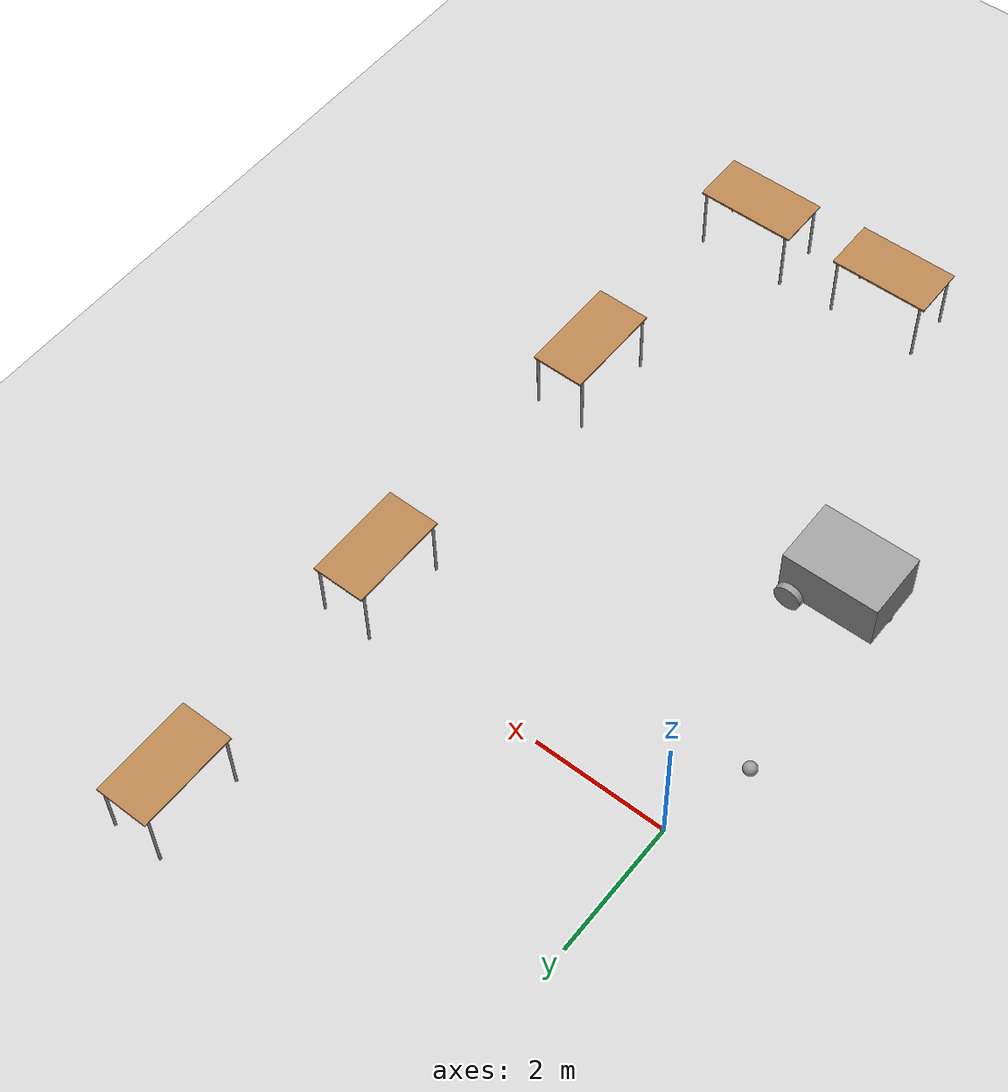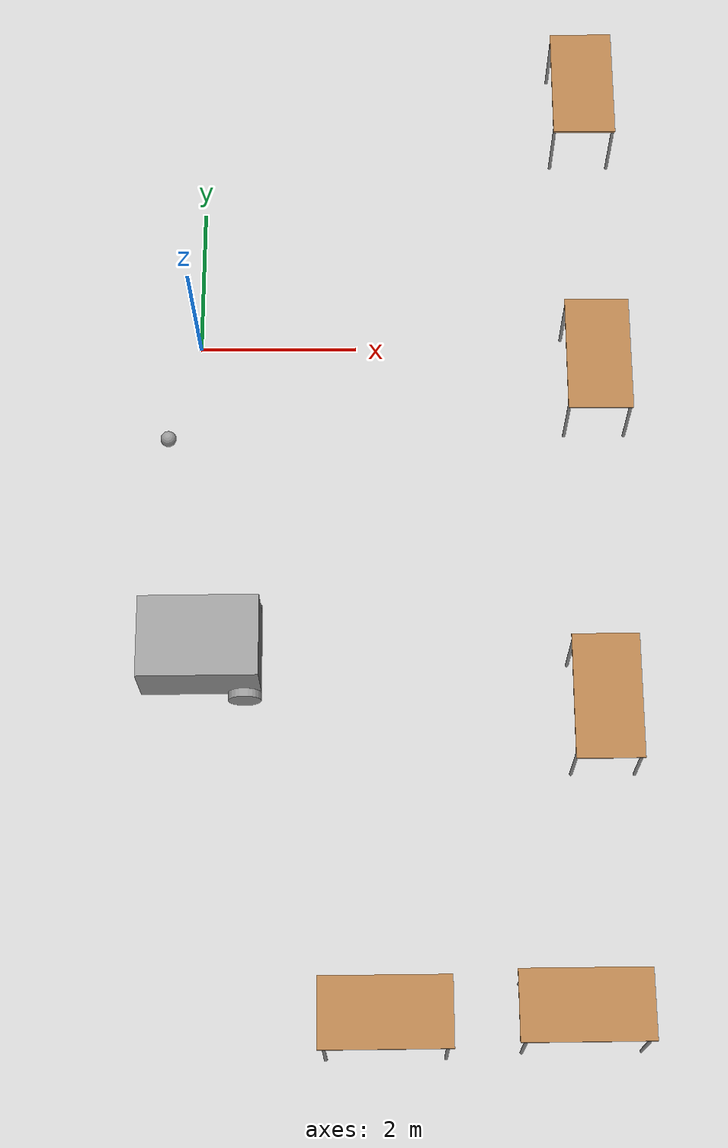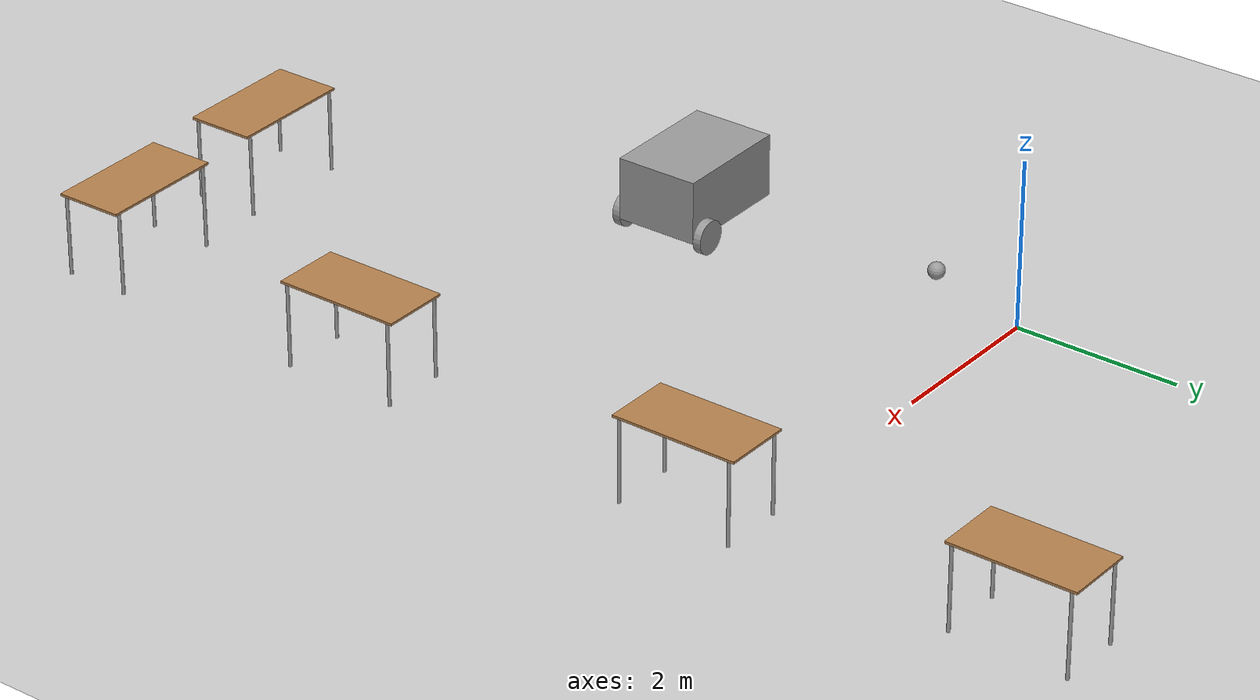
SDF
<sdf version="1.6">
 <world name="default">
  <model name="ground_plane">
   <static>1</static>
   <link name="link">
    <collision name="collision">
     <geometry><plane><normal>0 0 1</normal><size>100 100</size></plane></geometry>
     <surface>
      <contact><collide_bitmask>65535</collide_bitmask></contact>
      <friction><ode><mu>100</mu><mu2>50</mu2></ode></friction>
     </surface>
    </collision>
    <visual name="visual">
     <cast_shadows>0</cast_shadows>
     <geometry><plane><normal>0 0 1</normal><size>100 100</size></plane></geometry>
     <material>
      <script><uri>file://media/materials/scripts/gazebo.material</uri><name>Gazebo/Grey</name></script>
     </material>
    </visual>
   </link>
  </model>
  <model name="robot_0">
   <link name="link_5">
    <pose>-0.10582 0.004999 0.2875 0 -0 0</pose>
    <inertial>
     <mass>1.09116</mass>
     <inertia>
      <ixx>0.142667</ixx>
      <ixy>0</ixy>
      <ixz>0</ixz>
      <iyy>0.242013</iyy>
      <iyz>0</iyz>
      <izz>0.281205</izz>
     </inertia>
    </inertial>
    <visual name="visual">
     <geometry><box><size>1.44657 1 0.754307</size></box></geometry>
     <material>
      <lighting>1</lighting>
      <script><uri>file://media/materials/scripts/gazebo.material</uri><name>Gazebo/Grey</name></script>
      <shader type="pixel"><normal_map>__default__</normal_map></shader>
      <ambient>0.3 0.3 0.3 1</ambient>
      <diffuse>0.7 0.7 0.7 1</diffuse>
      <specular>0.01 0.01 0.01 1</specular>
      <emissive>0 0 0 1</emissive>
     </material>
    </visual>
    <collision name="collision">
     <geometry><box><size>1.44657 1 0.754307</size></box></geometry>
     <surface>
      <friction>
       <ode><mu>1</mu><mu2>1</mu2><fdir1>0 0 0</fdir1><slip1>0</slip1><slip2>0</slip2></ode>
       <torsional>
        <coefficient>1</coefficient>
        <patch_radius>0</patch_radius>
        <surface_radius>0</surface_radius>
        <use_patch_radius>1</use_patch_radius>
        <ode><slip>0</slip></ode>
       </torsional>
      </friction>
      <bounce><restitution_coefficient>0</restitution_coefficient><threshold>1e+06</threshold></bounce>
      <contact>
       <collide_without_contact>0</collide_without_contact>
       <collide_without_contact_bitmask>1</collide_without_contact_bitmask>
       <collide_bitmask>1</collide_bitmask>
       <ode>
        <soft_cfm>0</soft_cfm>
        <soft_erp>0.2</soft_erp>
        <kp>1e+13</kp>
        <kd>1</kd>
        <max_vel>0.01</max_vel>
        <min_depth>0</min_depth>
       </ode>
       <bullet>
        <split_impulse>1</split_impulse>
        <split_impulse_penetration_threshold>-0.01</split_impulse_penetration_threshold>
        <soft_cfm>0</soft_cfm>
        <soft_erp>0.2</soft_erp>
        <kp>1e+13</kp>
        <kd>1</kd>
       </bullet>
      </contact>
     </surface>
    </collision>
   </link>
   <link name="link_6">
    <pose>0.417463 -0.545019 -0.0625 1.5707 -0 0</pose>
    <inertial>
     <mass>1</mass>
     <inertia><ixx>0.145833</ixx><ixy>0</ixy><ixz>0</ixz><iyy>0.145833</iyy><iyz>0</iyz><izz>0.125</izz></inertia>
    </inertial>
    <visual name="visual">
     <geometry><cylinder><radius>0.2</radius><length>0.1</length></cylinder></geometry>
     <material>
      <lighting>1</lighting>
      <script><uri>file://media/materials/scripts/gazebo.material</uri><name>Gazebo/Grey</name></script>
      <shader type="pixel"><normal_map>__default__</normal_map></shader>
      <ambient>0.3 0.3 0.3 1</ambient>
      <diffuse>0.7 0.7 0.7 1</diffuse>
      <specular>0.01 0.01 0.01 1</specular>
      <emissive>0 0 0 1</emissive>
     </material>
    </visual>
    <collision name="collision">
     <geometry><cylinder><radius>0.2</radius><length>0.1</length></cylinder></geometry>
     <surface>
      <friction>
       <ode><mu>1</mu><mu2>1</mu2><fdir1>0 0 0</fdir1><slip1>0</slip1><slip2>0</slip2></ode>
       <torsional>
        <coefficient>1</coefficient>
        <patch_radius>0</patch_radius>
        <surface_radius>0</surface_radius>
        <use_patch_radius>1</use_patch_radius>
        <ode><slip>0</slip></ode>
       </torsional>
      </friction>
      <bounce><restitution_coefficient>0</restitution_coefficient><threshold>1e+06</threshold></bounce>
      <contact>
       <collide_without_contact>0</collide_without_contact>
       <collide_without_contact_bitmask>1</collide_without_contact_bitmask>
       <collide_bitmask>1</collide_bitmask>
       <ode>
        <soft_cfm>0</soft_cfm>
        <soft_erp>0.2</soft_erp>
        <kp>1e+13</kp>
        <kd>1</kd>
        <max_vel>0.01</max_vel>
        <min_depth>0</min_depth>
       </ode>
       <bullet>
        <split_impulse>1</split_impulse>
        <split_impulse_penetration_threshold>-0.01</split_impulse_penetration_threshold>
        <soft_cfm>0</soft_cfm>
        <soft_erp>0.2</soft_erp>
        <kp>1e+13</kp>
        <kd>1</kd>
       </bullet>
      </contact>
     </surface>
    </collision>
   </link>
   <link name="link_6_clone">
    <pose>0.417463 0.555018 -0.0625 1.5707 -0 0</pose>
    <inertial>
     <mass>1</mass>
     <inertia><ixx>0.145833</ixx><ixy>0</ixy><ixz>0</ixz><iyy>0.145833</iyy><iyz>0</iyz><izz>0.125</izz></inertia>
    </inertial>
    <visual name="visual">
     <geometry><cylinder><radius>0.2</radius><length>0.1</length></cylinder></geometry>
     <material>
      <lighting>1</lighting>
      <script><uri>file://media/materials/scripts/gazebo.material</uri><name>Gazebo/Grey</name></script>
      <shader type="pixel"><normal_map>__default__</normal_map></shader>
      <ambient>0.3 0.3 0.3 1</ambient>
      <diffuse>0.7 0.7 0.7 1</diffuse>
      <specular>0.01 0.01 0.01 1</specular>
      <emissive>0 0 0 1</emissive>
     </material>
    </visual>
    <collision name="collision">
     <geometry><cylinder><radius>0.2</radius><length>0.1</length></cylinder></geometry>
     <surface>
      <friction>
       <ode><mu>1</mu><mu2>1</mu2><fdir1>0 0 0</fdir1><slip1>0</slip1><slip2>0</slip2></ode>
       <torsional>
        <coefficient>1</coefficient>
        <patch_radius>0</patch_radius>
        <surface_radius>0</surface_radius>
        <use_patch_radius>1</use_patch_radius>
        <ode><slip>0</slip></ode>
       </torsional>
      </friction>
      <bounce><restitution_coefficient>0</restitution_coefficient><threshold>1e+06</threshold></bounce>
      <contact>
       <collide_without_contact>0</collide_without_contact>
       <collide_without_contact_bitmask>1</collide_without_contact_bitmask>
       <collide_bitmask>1</collide_bitmask>
       <ode>
        <soft_cfm>0</soft_cfm>
        <soft_erp>0.2</soft_erp>
        <kp>1e+13</kp>
        <kd>1</kd>
        <max_vel>0.01</max_vel>
        <min_depth>0</min_depth>
       </ode>
       <bullet>
        <split_impulse>1</split_impulse>
        <split_impulse_penetration_threshold>-0.01</split_impulse_penetration_threshold>
        <soft_cfm>0</soft_cfm>
        <soft_erp>0.2</soft_erp>
        <kp>1e+13</kp>
        <kd>1</kd>
       </bullet>
      </contact>
     </surface>
    </collision>
   </link>
   <link name="link_7">
    <pose>-0.729103 -0.015001 -0.1625 0 -0 0</pose>
    <inertial>
     <mass>1</mass>
     <inertia><ixx>0.1</ixx><ixy>0</ixy><ixz>0</ixz><iyy>0.1</iyy><iyz>0</iyz><izz>0.1</izz></inertia>
    </inertial>
    <visual name="visual">
     <geometry><sphere><radius>0.1</radius></sphere></geometry>
     <material>
      <lighting>1</lighting>
      <script><uri>file://media/materials/scripts/gazebo.material</uri><name>Gazebo/Grey</name></script>
      <shader type="pixel"><normal_map>__default__</normal_map></shader>
      <ambient>0.3 0.3 0.3 1</ambient>
      <diffuse>0.7 0.7 0.7 1</diffuse>
      <specular>0.01 0.01 0.01 1</specular>
      <emissive>0 0 0 1</emissive>
     </material>
    </visual>
    <collision name="collision">
     <geometry><sphere><radius>0.1</radius></sphere></geometry>
     <surface>
      <friction>
       <ode><mu>1</mu><mu2>1</mu2><fdir1>0 0 0</fdir1><slip1>0</slip1><slip2>0</slip2></ode>
       <torsional>
        <coefficient>1</coefficient>
        <patch_radius>0</patch_radius>
        <surface_radius>0</surface_radius>
        <use_patch_radius>1</use_patch_radius>
        <ode><slip>0</slip></ode>
       </torsional>
      </friction>
      <bounce><restitution_coefficient>0</restitution_coefficient><threshold>1e+06</threshold></bounce>
      <contact>
       <collide_without_contact>0</collide_without_contact>
       <collide_without_contact_bitmask>1</collide_without_contact_bitmask>
       <collide_bitmask>1</collide_bitmask>
       <ode>
        <soft_cfm>0</soft_cfm>
        <soft_erp>0.2</soft_erp>
        <kp>1e+13</kp>
        <kd>1</kd>
        <max_vel>0.01</max_vel>
        <min_depth>0</min_depth>
       </ode>
       <bullet>
        <split_impulse>1</split_impulse>
        <split_impulse_penetration_threshold>-0.01</split_impulse_penetration_threshold>
        <soft_cfm>0</soft_cfm>
        <soft_erp>0.2</soft_erp>
        <kp>1e+13</kp>
        <kd>1</kd>
       </bullet>
      </contact>
     </surface>
    </collision>
   </link>
   <joint name="link_5_JOINT_0" type="ball">
    <parent>link_5</parent>
    <child>link_7</child>
    <physics>
     <ode><limit><cfm>0</cfm><erp>0.2</erp></limit><suspension><cfm>0</cfm><erp>0.2</erp></suspension></ode>
    </physics>
   </joint>
   <joint name="link_5_JOINT_2" type="revolute">
    <parent>link_5</parent>
    <child>link_6</child>
    <axis>
     <xyz>0 0 1</xyz>
     <use_parent_model_frame>0</use_parent_model_frame>
     <limit>
      <lower>-1.79769e+308</lower>
      <upper>1.79769e+308</upper>
      <effort>-1</effort>
      <velocity>-1</velocity>
     </limit>
     <dynamics>
      <spring_reference>0</spring_reference>
      <spring_stiffness>0</spring_stiffness>
      <damping>0</damping>
     </dynamics>
    </axis>
    <physics>
     <ode><limit><cfm>0</cfm><erp>0.2</erp></limit><suspension><cfm>0</cfm><erp>0.2</erp></suspension></ode>
    </physics>
   </joint>
   <joint name="link_5_JOINT_3" type="revolute">
    <parent>link_5</parent>
    <child>link_6_clone</child>
    <axis>
     <xyz>0 0 1</xyz>
     <use_parent_model_frame>0</use_parent_model_frame>
     <limit>
      <lower>-1.79769e+308</lower>
      <upper>1.79769e+308</upper>
      <effort>-1</effort>
      <velocity>-1</velocity>
     </limit>
     <dynamics>
      <spring_reference>0</spring_reference>
      <spring_stiffness>0</spring_stiffness>
      <damping>0</damping>
     </dynamics>
    </axis>
    <physics>
     <ode><limit><cfm>0</cfm><erp>0.2</erp></limit><suspension><cfm>0</cfm><erp>0.2</erp></suspension></ode>
    </physics>
   </joint>
   <static>0</static>
   <pose>0.251553 -4.19406 0.2625 0 -1.3e-05 0.008367</pose>
  </model>
  <model name="table_clone_0">
   <static>1</static>
   <link name="link">
    <collision name="surface">
     <pose>0 0 1 0 -0 0</pose>
     <geometry><box><size>1.5 0.8 0.03</size></box></geometry>
     <surface><friction><ode><mu>0.6</mu><mu2>0.6</mu2></ode></friction></surface>
    </collision>
    <visual name="visual1">
     <pose>0 0 1 0 -0 0</pose>
     <geometry><box><size>1.5 0.8 0.03</size></box></geometry>
     <material>
      <script><uri>file://media/materials/scripts/gazebo.material</uri><name>Gazebo/Wood</name></script>
     </material>
    </visual>
    <collision name="front_left_leg">
     <pose>0.68 0.38 0.5 0 -0 0</pose>
     <geometry><cylinder><radius>0.02</radius><length>1</length></cylinder></geometry>
    </collision>
    <visual name="front_left_leg">
     <pose>0.68 0.38 0.5 0 -0 0</pose>
     <geometry><cylinder><radius>0.02</radius><length>1</length></cylinder></geometry>
     <material>
      <script><uri>file://media/materials/scripts/gazebo.material</uri><name>Gazebo/Grey</name></script>
     </material>
    </visual>
    <collision name="front_right_leg">
     <pose>0.68 -0.38 0.5 0 -0 0</pose>
     <geometry><cylinder><radius>0.02</radius><length>1</length></cylinder></geometry>
    </collision>
    <visual name="front_right_leg">
     <pose>0.68 -0.38 0.5 0 -0 0</pose>
     <geometry><cylinder><radius>0.02</radius><length>1</length></cylinder></geometry>
     <material>
      <script><uri>file://media/materials/scripts/gazebo.material</uri><name>Gazebo/Grey</name></script>
     </material>
    </visual>
    <collision name="back_right_leg">
     <pose>-0.68 -0.38 0.5 0 -0 0</pose>
     <geometry><cylinder><radius>0.02</radius><length>1</length></cylinder></geometry>
    </collision>
    <visual name="back_right_leg">
     <pose>-0.68 -0.38 0.5 0 -0 0</pose>
     <geometry><cylinder><radius>0.02</radius><length>1</length></cylinder></geometry>
     <material>
      <script><uri>file://media/materials/scripts/gazebo.material</uri><name>Gazebo/Grey</name></script>
     </material>
    </visual>
    <collision name="back_left_leg">
     <pose>-0.68 0.38 0.5 0 -0 0</pose>
     <geometry><cylinder><radius>0.02</radius><length>1</length></cylinder></geometry>
    </collision>
    <visual name="back_left_leg">
     <pose>-0.68 0.38 0.5 0 -0 0</pose>
     <geometry><cylinder><radius>0.02</radius><length>1</length></cylinder></geometry>
     <material>
      <script><uri>file://media/materials/scripts/gazebo.material</uri><name>Gazebo/Grey</name></script>
     </material>
    </visual>
   </link>
   <pose>4.56313 -8.49846 0 0 -0 0.00672</pose>
  </model>
  <model name="table_clone_1">
   <static>1</static>
   <link name="link">
    <collision name="surface">
     <pose>0 0 1 0 -0 0</pose>
     <geometry><box><size>1.5 0.8 0.03</size></box></geometry>
     <surface><friction><ode><mu>0.6</mu><mu2>0.6</mu2></ode></friction></surface>
    </collision>
    <visual name="visual1">
     <pose>0 0 1 0 -0 0</pose>
     <geometry><box><size>1.5 0.8 0.03</size></box></geometry>
     <material>
      <script><uri>file://media/materials/scripts/gazebo.material</uri><name>Gazebo/Wood</name></script>
     </material>
    </visual>
    <collision name="front_left_leg">
     <pose>0.68 0.38 0.5 0 -0 0</pose>
     <geometry><cylinder><radius>0.02</radius><length>1</length></cylinder></geometry>
    </collision>
    <visual name="front_left_leg">
     <pose>0.68 0.38 0.5 0 -0 0</pose>
     <geometry><cylinder><radius>0.02</radius><length>1</length></cylinder></geometry>
     <material>
      <script><uri>file://media/materials/scripts/gazebo.material</uri><name>Gazebo/Grey</name></script>
     </material>
    </visual>
    <collision name="front_right_leg">
     <pose>0.68 -0.38 0.5 0 -0 0</pose>
     <geometry><cylinder><radius>0.02</radius><length>1</length></cylinder></geometry>
    </collision>
    <visual name="front_right_leg">
     <pose>0.68 -0.38 0.5 0 -0 0</pose>
     <geometry><cylinder><radius>0.02</radius><length>1</length></cylinder></geometry>
     <material>
      <script><uri>file://media/materials/scripts/gazebo.material</uri><name>Gazebo/Grey</name></script>
     </material>
    </visual>
    <collision name="back_right_leg">
     <pose>-0.68 -0.38 0.5 0 -0 0</pose>
     <geometry><cylinder><radius>0.02</radius><length>1</length></cylinder></geometry>
    </collision>
    <visual name="back_right_leg">
     <pose>-0.68 -0.38 0.5 0 -0 0</pose>
     <geometry><cylinder><radius>0.02</radius><length>1</length></cylinder></geometry>
     <material>
      <script><uri>file://media/materials/scripts/gazebo.material</uri><name>Gazebo/Grey</name></script>
     </material>
    </visual>
    <collision name="back_left_leg">
     <pose>-0.68 0.38 0.5 0 -0 0</pose>
     <geometry><cylinder><radius>0.02</radius><length>1</length></cylinder></geometry>
    </collision>
    <visual name="back_left_leg">
     <pose>-0.68 0.38 0.5 0 -0 0</pose>
     <geometry><cylinder><radius>0.02</radius><length>1</length></cylinder></geometry>
     <material>
      <script><uri>file://media/materials/scripts/gazebo.material</uri><name>Gazebo/Grey</name></script>
     </material>
    </visual>
   </link>
   <pose>2.34793 -8.56774 0 0 -0 0.00672</pose>
  </model>
  <model name="table_clone_2">
   <static>1</static>
   <link name="link">
    <collision name="surface">
     <pose>0 0 1 0 -0 0</pose>
     <geometry><box><size>1.5 0.8 0.03</size></box></geometry>
     <surface><friction><ode><mu>0.6</mu><mu2>0.6</mu2></ode></friction></surface>
    </collision>
    <visual name="visual1">
     <pose>0 0 1 0 -0 0</pose>
     <geometry><box><size>1.5 0.8 0.03</size></box></geometry>
     <material>
      <script><uri>file://media/materials/scripts/gazebo.material</uri><name>Gazebo/Wood</name></script>
     </material>
    </visual>
    <collision name="front_left_leg">
     <pose>0.68 0.38 0.5 0 -0 0</pose>
     <geometry><cylinder><radius>0.02</radius><length>1</length></cylinder></geometry>
    </collision>
    <visual name="front_left_leg">
     <pose>0.68 0.38 0.5 0 -0 0</pose>
     <geometry><cylinder><radius>0.02</radius><length>1</length></cylinder></geometry>
     <material>
      <script><uri>file://media/materials/scripts/gazebo.material</uri><name>Gazebo/Grey</name></script>
     </material>
    </visual>
    <collision name="front_right_leg">
     <pose>0.68 -0.38 0.5 0 -0 0</pose>
     <geometry><cylinder><radius>0.02</radius><length>1</length></cylinder></geometry>
    </collision>
    <visual name="front_right_leg">
     <pose>0.68 -0.38 0.5 0 -0 0</pose>
     <geometry><cylinder><radius>0.02</radius><length>1</length></cylinder></geometry>
     <material>
      <script><uri>file://media/materials/scripts/gazebo.material</uri><name>Gazebo/Grey</name></script>
     </material>
    </visual>
    <collision name="back_right_leg">
     <pose>-0.68 -0.38 0.5 0 -0 0</pose>
     <geometry><cylinder><radius>0.02</radius><length>1</length></cylinder></geometry>
    </collision>
    <visual name="back_right_leg">
     <pose>-0.68 -0.38 0.5 0 -0 0</pose>
     <geometry><cylinder><radius>0.02</radius><length>1</length></cylinder></geometry>
     <material>
      <script><uri>file://media/materials/scripts/gazebo.material</uri><name>Gazebo/Grey</name></script>
     </material>
    </visual>
    <collision name="back_left_leg">
     <pose>-0.68 0.38 0.5 0 -0 0</pose>
     <geometry><cylinder><radius>0.02</radius><length>1</length></cylinder></geometry>
    </collision>
    <visual name="back_left_leg">
     <pose>-0.68 0.38 0.5 0 -0 0</pose>
     <geometry><cylinder><radius>0.02</radius><length>1</length></cylinder></geometry>
     <material>
      <script><uri>file://media/materials/scripts/gazebo.material</uri><name>Gazebo/Grey</name></script>
     </material>
    </visual>
   </link>
   <pose>4.95033 -4.97746 0 0 -0 1.56921</pose>
  </model>
  <model name="table_clone_2_clone">
   <static>1</static>
   <link name="link">
    <collision name="surface">
     <pose>0 0 1 0 -0 0</pose>
     <geometry><box><size>1.5 0.8 0.03</size></box></geometry>
     <surface><friction><ode><mu>0.6</mu><mu2>0.6</mu2></ode></friction></surface>
    </collision>
    <visual name="visual1">
     <pose>0 0 1 0 -0 0</pose>
     <geometry><box><size>1.5 0.8 0.03</size></box></geometry>
     <material>
      <script><uri>file://media/materials/scripts/gazebo.material</uri><name>Gazebo/Wood</name></script>
     </material>
    </visual>
    <collision name="front_left_leg">
     <pose>0.68 0.38 0.5 0 -0 0</pose>
     <geometry><cylinder><radius>0.02</radius><length>1</length></cylinder></geometry>
    </collision>
    <visual name="front_left_leg">
     <pose>0.68 0.38 0.5 0 -0 0</pose>
     <geometry><cylinder><radius>0.02</radius><length>1</length></cylinder></geometry>
     <material>
      <script><uri>file://media/materials/scripts/gazebo.material</uri><name>Gazebo/Grey</name></script>
     </material>
    </visual>
    <collision name="front_right_leg">
     <pose>0.68 -0.38 0.5 0 -0 0</pose>
     <geometry><cylinder><radius>0.02</radius><length>1</length></cylinder></geometry>
    </collision>
    <visual name="front_right_leg">
     <pose>0.68 -0.38 0.5 0 -0 0</pose>
     <geometry><cylinder><radius>0.02</radius><length>1</length></cylinder></geometry>
     <material>
      <script><uri>file://media/materials/scripts/gazebo.material</uri><name>Gazebo/Grey</name></script>
     </material>
    </visual>
    <collision name="back_right_leg">
     <pose>-0.68 -0.38 0.5 0 -0 0</pose>
     <geometry><cylinder><radius>0.02</radius><length>1</length></cylinder></geometry>
    </collision>
    <visual name="back_right_leg">
     <pose>-0.68 -0.38 0.5 0 -0 0</pose>
     <geometry><cylinder><radius>0.02</radius><length>1</length></cylinder></geometry>
     <material>
      <script><uri>file://media/materials/scripts/gazebo.material</uri><name>Gazebo/Grey</name></script>
     </material>
    </visual>
    <collision name="back_left_leg">
     <pose>-0.68 0.38 0.5 0 -0 0</pose>
     <geometry><cylinder><radius>0.02</radius><length>1</length></cylinder></geometry>
    </collision>
    <visual name="back_left_leg">
     <pose>-0.68 0.38 0.5 0 -0 0</pose>
     <geometry><cylinder><radius>0.02</radius><length>1</length></cylinder></geometry>
     <material>
      <script><uri>file://media/materials/scripts/gazebo.material</uri><name>Gazebo/Grey</name></script>
     </material>
    </visual>
   </link>
   <pose>5.03195 -0.555453 0 0 -0 1.56921</pose>
  </model>
  <model name="table_clone_2_clone_0">
   <static>1</static>
   <link name="link">
    <collision name="surface">
     <pose>0 0 1 0 -0 0</pose>
     <geometry><box><size>1.5 0.8 0.03</size></box></geometry>
     <surface><friction><ode><mu>0.6</mu><mu2>0.6</mu2></ode></friction></surface>
    </collision>
    <visual name="visual1">
     <pose>0 0 1 0 -0 0</pose>
     <geometry><box><size>1.5 0.8 0.03</size></box></geometry>
     <material>
      <script><uri>file://media/materials/scripts/gazebo.material</uri><name>Gazebo/Wood</name></script>
     </material>
    </visual>
    <collision name="front_left_leg">
     <pose>0.68 0.38 0.5 0 -0 0</pose>
     <geometry><cylinder><radius>0.02</radius><length>1</length></cylinder></geometry>
    </collision>
    <visual name="front_left_leg">
     <pose>0.68 0.38 0.5 0 -0 0</pose>
     <geometry><cylinder><radius>0.02</radius><length>1</length></cylinder></geometry>
     <material>
      <script><uri>file://media/materials/scripts/gazebo.material</uri><name>Gazebo/Grey</name></script>
     </material>
    </visual>
    <collision name="front_right_leg">
     <pose>0.68 -0.38 0.5 0 -0 0</pose>
     <geometry><cylinder><radius>0.02</radius><length>1</length></cylinder></geometry>
    </collision>
    <visual name="front_right_leg">
     <pose>0.68 -0.38 0.5 0 -0 0</pose>
     <geometry><cylinder><radius>0.02</radius><length>1</length></cylinder></geometry>
     <material>
      <script><uri>file://media/materials/scripts/gazebo.material</uri><name>Gazebo/Grey</name></script>
     </material>
    </visual>
    <collision name="back_right_leg">
     <pose>-0.68 -0.38 0.5 0 -0 0</pose>
     <geometry><cylinder><radius>0.02</radius><length>1</length></cylinder></geometry>
    </collision>
    <visual name="back_right_leg">
     <pose>-0.68 -0.38 0.5 0 -0 0</pose>
     <geometry><cylinder><radius>0.02</radius><length>1</length></cylinder></geometry>
     <material>
      <script><uri>file://media/materials/scripts/gazebo.material</uri><name>Gazebo/Grey</name></script>
     </material>
    </visual>
    <collision name="back_left_leg">
     <pose>-0.68 0.38 0.5 0 -0 0</pose>
     <geometry><cylinder><radius>0.02</radius><length>1</length></cylinder></geometry>
    </collision>
    <visual name="back_left_leg">
     <pose>-0.68 0.38 0.5 0 -0 0</pose>
     <geometry><cylinder><radius>0.02</radius><length>1</length></cylinder></geometry>
     <material>
      <script><uri>file://media/materials/scripts/gazebo.material</uri><name>Gazebo/Grey</name></script>
     </material>
    </visual>
   </link>
   <pose>4.98677 3.39885 0 0 -0 1.56921</pose>
  </model>
  <model name="my_ball">
   <link name="link">
    <inertial>
     <mass>1</mass>
     <inertia><ixx>0.1</ixx><ixy>0</ixy><ixz>0</ixz><iyy>0.1</iyy><iyz>0</iyz><izz>0.1</izz></inertia>
    </inertial>
    <visual name="visual">
     <geometry><sphere><radius>0.1</radius></sphere></geometry>
     <material>
      <script><name>Gazebo/Grey</name><uri>file://media/materials/scripts/gazebo.material</uri></script>
      <shader type="pixel"><normal_map>__default__</normal_map></shader>
      <ambient>1 1 1 1</ambient>
      <diffuse>1 1 1 1</diffuse>
      <specular>1 1 1 1</specular>
      <emissive>0 0 0 1</emissive>
     </material>
    </visual>
    <collision name="collision">
     <geometry><sphere><radius>0.1</radius></sphere></geometry>
     <surface>
      <friction>
       <ode><mu>1</mu><mu2>1</mu2><fdir1>0 0 0</fdir1><slip1>0</slip1><slip2>0</slip2></ode>
       <torsional>
        <coefficient>1</coefficient>
        <patch_radius>0</patch_radius>
        <surface_radius>0</surface_radius>
        <use_patch_radius>1</use_patch_radius>
        <ode><slip>0</slip></ode>
       </torsional>
      </friction>
      <bounce><restitution_coefficient>0</restitution_coefficient><threshold>1e+06</threshold></bounce>
      <contact>
       <collide_without_contact>0</collide_without_contact>
       <collide_without_contact_bitmask>1</collide_without_contact_bitmask>
       <collide_bitmask>1</collide_bitmask>
       <ode>
        <soft_cfm>0</soft_cfm>
        <soft_erp>0.2</soft_erp>
        <kp>1e+13</kp>
        <kd>1</kd>
        <max_vel>0.01</max_vel>
        <min_depth>0</min_depth>
       </ode>
       <bullet>
        <split_impulse>1</split_impulse>
        <split_impulse_penetration_threshold>-0.01</split_impulse_penetration_threshold>
        <soft_cfm>0</soft_cfm>
        <soft_erp>0.2</soft_erp>
        <kp>1e+13</kp>
        <kd>1</kd>
       </bullet>
      </contact>
     </surface>
    </collision>
   </link>
   <static>0</static>
   <pose>-0.376393 -1.29758 0.1 0 -0 0</pose>
  </model>
 </world>
</sdf>
